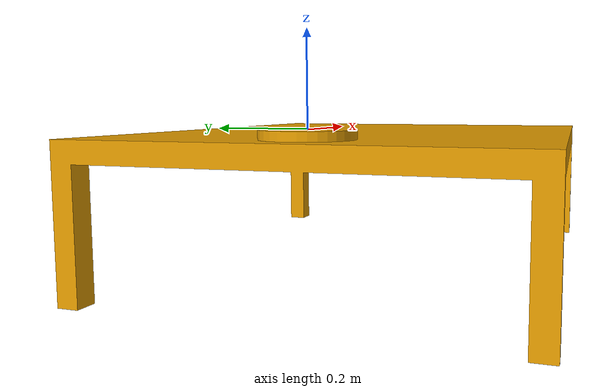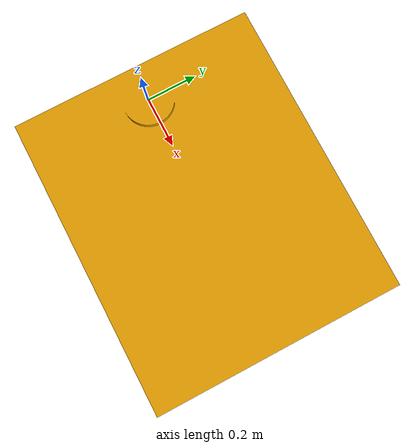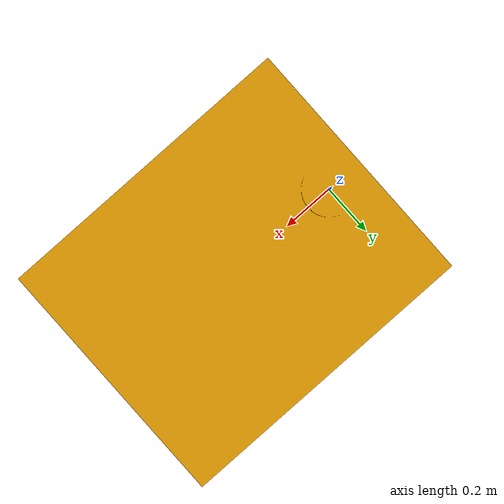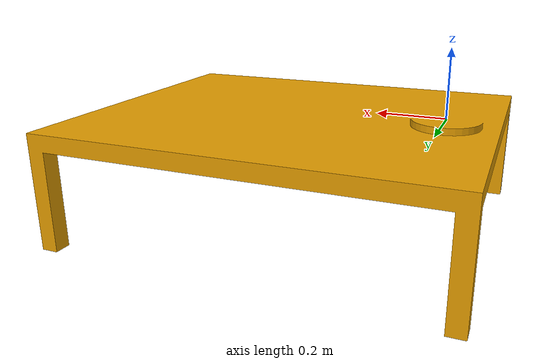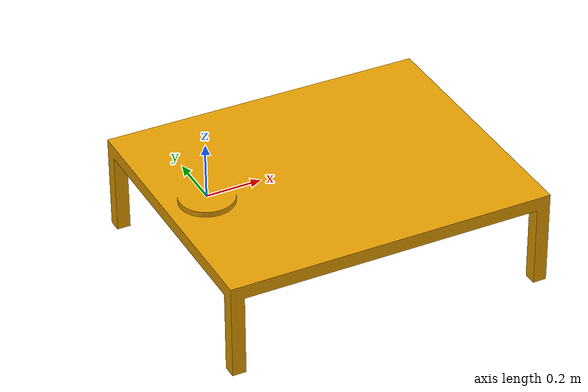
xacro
<?xml version="1.0" ?>
<robot name="table" xmlns:xacro="http://ros.org/wiki/xacro">

	<link name="table">
		<visual>
			<origin xyz="0 0 0" rpy="1.57079 0 1.57079"/>
			<geometry>
				<mesh filename="package://indy7_description/meshes/table/table.obj"/>
			</geometry>
		</visual>
		<collision>
			<origin xyz="0 0 0.0" rpy="1.57079 0 1.57079"/>
			<geometry>
				<mesh filename="package://indy7_description/meshes/table/table.obj"/>
			</geometry>
		</collision>
		<inertial>
			<origin xyz="0 0 0" rpy="0 0 0"/>
			<mass value="1.59306955"/>
			<inertia ixx="+0.00572623" iyy="+0.00558959" izz="+0.00966674" ixy="+0.00000251" iyz="-0.00000014" ixz="-0.00011380"/>
		</inertial>
	</link>

</robot>
